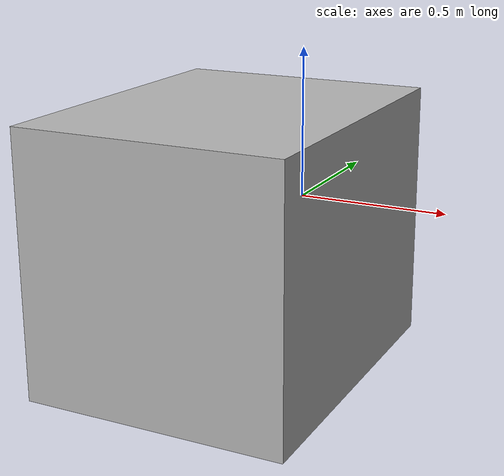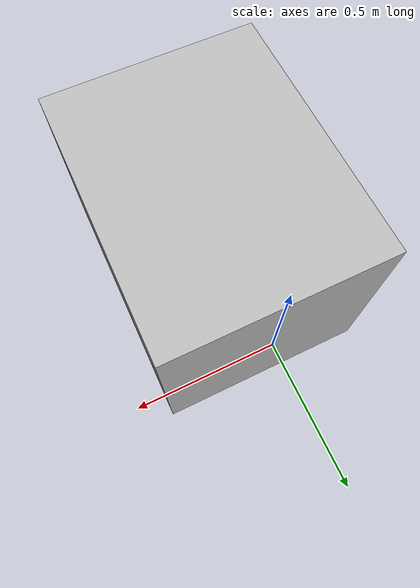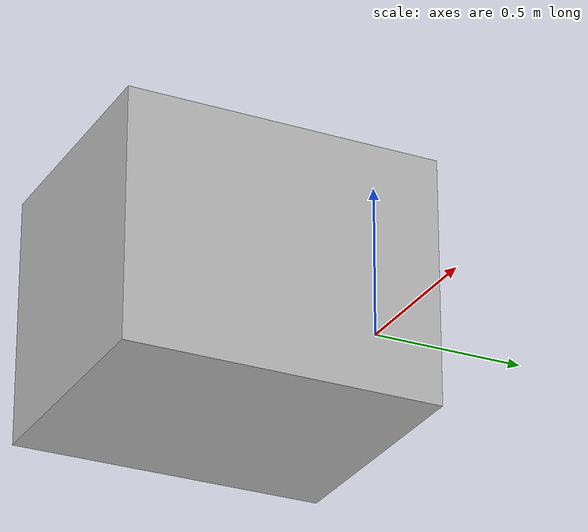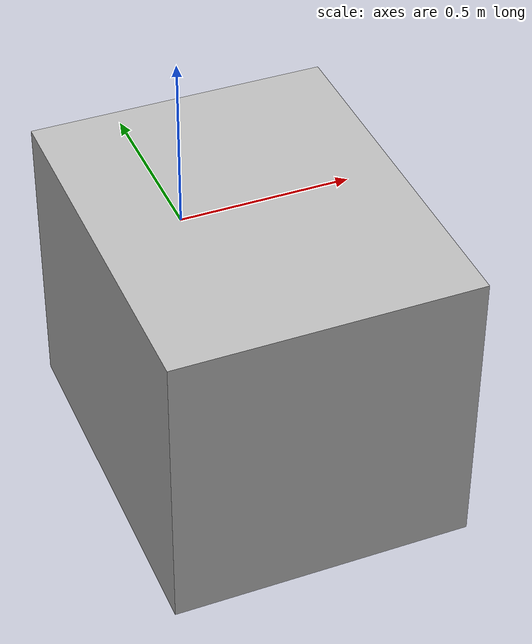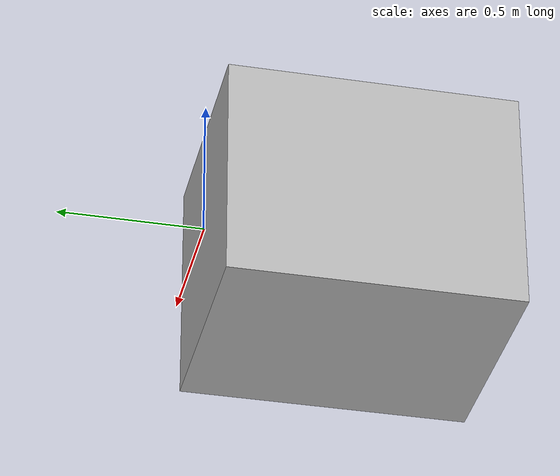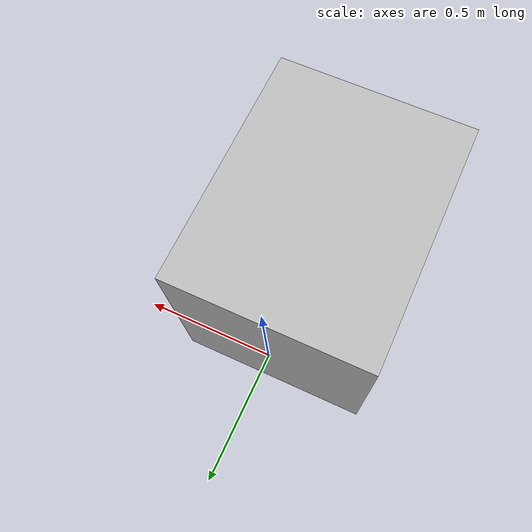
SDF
<?xml version='1.0' ?>
<sdf version="1.6">
    <model name="CubeSoft">
        <static>true</static>
        <link name="link">
            <pose>0 0 0 1.57 3.14159 0</pose>
            <collision name="collision">
                <geometry>
                    <mesh>
                        <uri>meshes/Cuboid_8x8x10.stl</uri>
                        <scale>0.0001 0.0001 0.0001</scale>
                    </mesh>
                </geometry>
            </collision>
            <visual name="visual">
                <geometry>
                    <mesh>
                        <uri>meshes/Cuboid_8x8x10.stl</uri>
                        <scale>0.0001 0.0001 0.0001</scale>
                    </mesh>
                </geometry>
            </visual>
        </link>
    </model>
</sdf>
